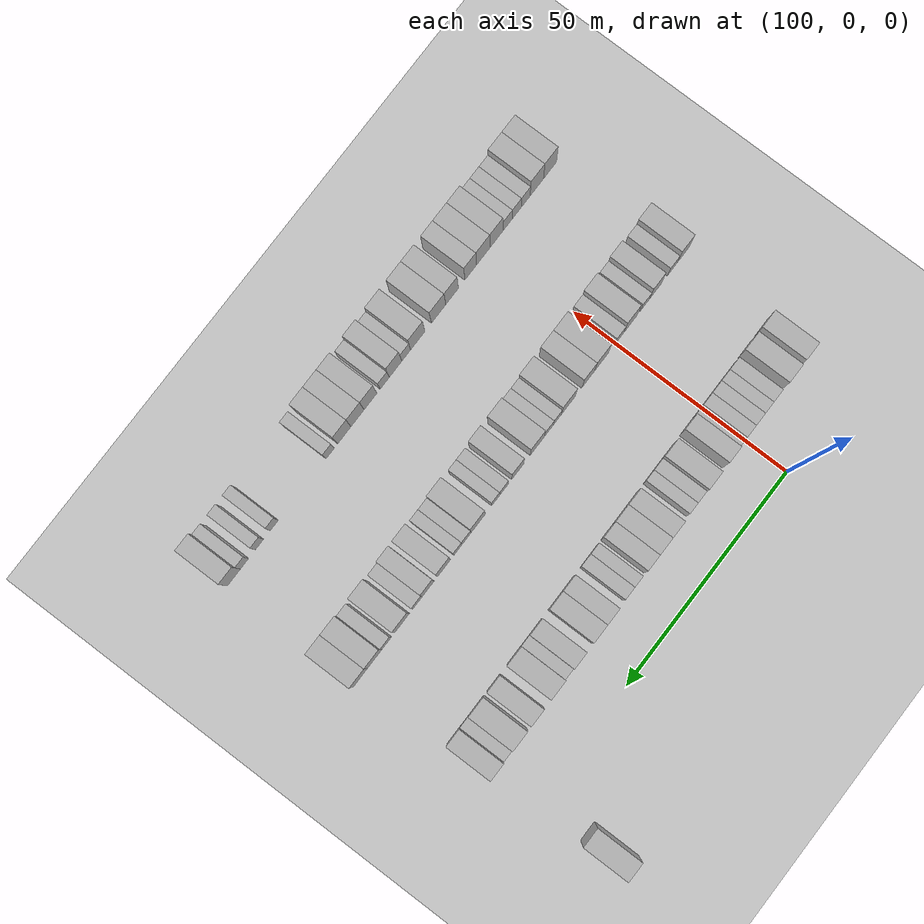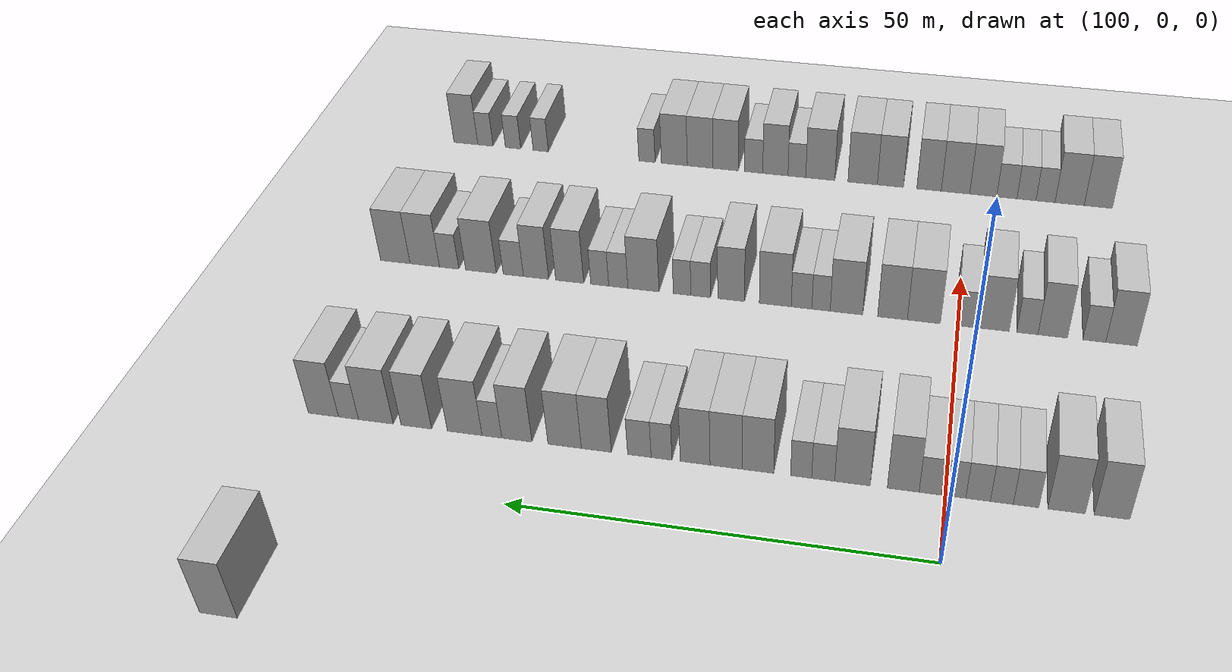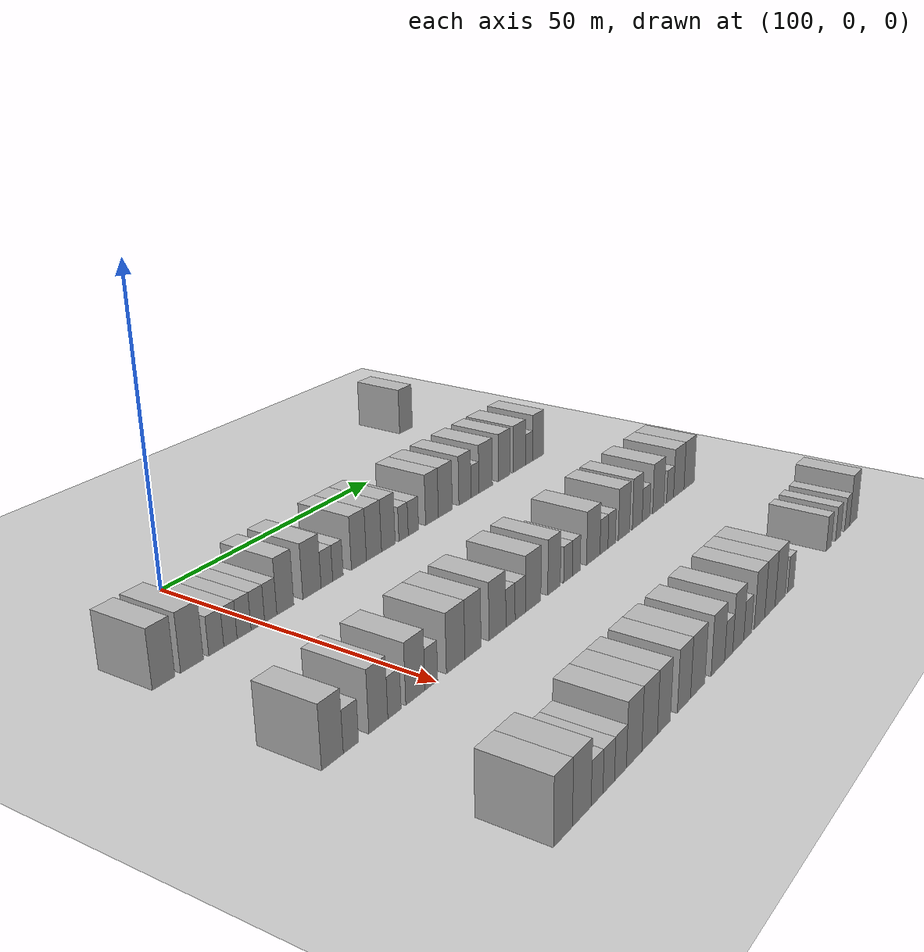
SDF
<sdf version="1.6">
 <world name="default">
  <include>
   <name>ground_plane_2</name>
   <uri>model://HANNAS_ground_plane</uri>
   <pose>100 0 0  0 0 0</pose>
  </include>
  <model name="building_597">
   <static>1</static>
   <pose>85.0000 75.3074 0 0.000000 0.000000 0.000000</pose>
   <link name="link">
    <pose>0 0 4.50 0 0 0</pose>
    <collision name="collision"><geometry><box><size>10.0000 4.2832 9.0000</size></box></geometry></collision>
    <visual name="visual">
     <cast_shadows>0</cast_shadows>
     <geometry><box><size>10.0000 4.2832 9.0000</size></box></geometry>
     <material>
      <script>
       <uri>model://HANNAS_wall/materials/scripts</uri>
       <uri>model://HANNAS_wall/materials/textures</uri>
       <name>vrc/HANNAS_wall</name>
      </script>
     </material>
    </visual>
   </link>
  </model>
  <model name="building_800">
   <static>1</static>
   <pose>115.0000 -18.8360 0 0.000000 0.000000 0.000000</pose>
   <link name="link">
    <pose>0 0 4.50 0 0 0</pose>
    <collision name="collision"><geometry><box><size>10.0000 4.0035 9.0000</size></box></geometry></collision>
    <visual name="visual">
     <cast_shadows>0</cast_shadows>
     <geometry><box><size>10.0000 4.0035 9.0000</size></box></geometry>
     <material>
      <script>
       <uri>model://HANNAS_wall/materials/scripts</uri>
       <uri>model://HANNAS_wall/materials/textures</uri>
       <name>vrc/HANNAS_wall</name>
      </script>
     </material>
    </visual>
   </link>
  </model>
  <model name="building_801">
   <static>1</static>
   <pose>115.0000 -13.7265 0 0.000000 0.000000 0.000000</pose>
   <link name="link">
    <pose>0 0 4.50 0 0 0</pose>
    <collision name="collision"><geometry><box><size>10.0000 4.2156 9.0000</size></box></geometry></collision>
    <visual name="visual">
     <cast_shadows>0</cast_shadows>
     <geometry><box><size>10.0000 4.2156 9.0000</size></box></geometry>
     <material>
      <script>
       <uri>model://HANNAS_wall/materials/scripts</uri>
       <uri>model://HANNAS_wall/materials/textures</uri>
       <name>vrc/HANNAS_wall</name>
      </script>
     </material>
    </visual>
   </link>
  </model>
  <model name="building_802">
   <static>1</static>
   <pose>115.0000 -9.1672 0 0.000000 0.000000 0.000000</pose>
   <link name="link">
    <pose>0 0 3.00 0 0 0</pose>
    <collision name="collision"><geometry><box><size>10.0000 2.9031 6.0000</size></box></geometry></collision>
    <visual name="visual">
     <cast_shadows>0</cast_shadows>
     <geometry><box><size>10.0000 2.9031 6.0000</size></box></geometry>
     <material>
      <script>
       <uri>model://HANNAS_wall/materials/scripts</uri>
       <uri>model://HANNAS_wall/materials/textures</uri>
       <name>vrc/HANNAS_wall</name>
      </script>
     </material>
    </visual>
   </link>
  </model>
  <model name="building_803">
   <static>1</static>
   <pose>115.0000 -6.4113 0 0.000000 0.000000 0.000000</pose>
   <link name="link">
    <pose>0 0 3.00 0 0 0</pose>
    <collision name="collision"><geometry><box><size>10.0000 2.6087 6.0000</size></box></geometry></collision>
    <visual name="visual">
     <cast_shadows>0</cast_shadows>
     <geometry><box><size>10.0000 2.6087 6.0000</size></box></geometry>
     <material>
      <script>
       <uri>model://HANNAS_wall/materials/scripts</uri>
       <uri>model://HANNAS_wall/materials/textures</uri>
       <name>vrc/HANNAS_wall</name>
      </script>
     </material>
    </visual>
   </link>
  </model>
  <model name="building_804">
   <static>1</static>
   <pose>115.0000 -3.6990 0 0.000000 0.000000 0.000000</pose>
   <link name="link">
    <pose>0 0 3.00 0 0 0</pose>
    <collision name="collision"><geometry><box><size>10.0000 2.8160 6.0000</size></box></geometry></collision>
    <visual name="visual">
     <cast_shadows>0</cast_shadows>
     <geometry><box><size>10.0000 2.8160 6.0000</size></box></geometry>
     <material>
      <script>
       <uri>model://HANNAS_wall/materials/scripts</uri>
       <uri>model://HANNAS_wall/materials/textures</uri>
       <name>vrc/HANNAS_wall</name>
      </script>
     </material>
    </visual>
   </link>
  </model>
  <model name="building_805">
   <static>1</static>
   <pose>115.0000 -0.8877 0 0.000000 0.000000 0.000000</pose>
   <link name="link">
    <pose>0 0 3.00 0 0 0</pose>
    <collision name="collision"><geometry><box><size>10.0000 2.8067 6.0000</size></box></geometry></collision>
    <visual name="visual">
     <cast_shadows>0</cast_shadows>
     <geometry><box><size>10.0000 2.8067 6.0000</size></box></geometry>
     <material>
      <script>
       <uri>model://HANNAS_wall/materials/scripts</uri>
       <uri>model://HANNAS_wall/materials/textures</uri>
       <name>vrc/HANNAS_wall</name>
      </script>
     </material>
    </visual>
   </link>
  </model>
  <model name="building_806">
   <static>1</static>
   <pose>115.0000 1.8029 0 0.000000 0.000000 0.000000</pose>
   <link name="link">
    <pose>0 0 3.00 0 0 0</pose>
    <collision name="collision"><geometry><box><size>10.0000 2.5746 6.0000</size></box></geometry></collision>
    <visual name="visual">
     <cast_shadows>0</cast_shadows>
     <geometry><box><size>10.0000 2.5746 6.0000</size></box></geometry>
     <material>
      <script>
       <uri>model://HANNAS_wall/materials/scripts</uri>
       <uri>model://HANNAS_wall/materials/textures</uri>
       <name>vrc/HANNAS_wall</name>
      </script>
     </material>
    </visual>
   </link>
  </model>
  <model name="building_807">
   <static>1</static>
   <pose>115.0000 4.9332 0 0.000000 0.000000 0.000000</pose>
   <link name="link">
    <pose>0 0 4.50 0 0 0</pose>
    <collision name="collision"><geometry><box><size>10.0000 3.6859 9.0000</size></box></geometry></collision>
    <visual name="visual">
     <cast_shadows>0</cast_shadows>
     <geometry><box><size>10.0000 3.6859 9.0000</size></box></geometry>
     <material>
      <script>
       <uri>model://HANNAS_wall/materials/scripts</uri>
       <uri>model://HANNAS_wall/materials/textures</uri>
       <name>vrc/HANNAS_wall</name>
      </script>
     </material>
    </visual>
   </link>
  </model>
  <model name="building_808">
   <static>1</static>
   <pose>115.0000 10.8562 0 0.000000 0.000000 0.000000</pose>
   <link name="link">
    <pose>0 0 4.50 0 0 0</pose>
    <collision name="collision"><geometry><box><size>10.0000 4.1600 9.0000</size></box></geometry></collision>
    <visual name="visual">
     <cast_shadows>0</cast_shadows>
     <geometry><box><size>10.0000 4.1600 9.0000</size></box></geometry>
     <material>
      <script>
       <uri>model://HANNAS_wall/materials/scripts</uri>
       <uri>model://HANNAS_wall/materials/textures</uri>
       <name>vrc/HANNAS_wall</name>
      </script>
     </material>
    </visual>
   </link>
  </model>
  <model name="building_809">
   <static>1</static>
   <pose>115.0000 14.2972 0 0.000000 0.000000 0.000000</pose>
   <link name="link">
    <pose>0 0 3.00 0 0 0</pose>
    <collision name="collision"><geometry><box><size>10.0000 2.7220 6.0000</size></box></geometry></collision>
    <visual name="visual">
     <cast_shadows>0</cast_shadows>
     <geometry><box><size>10.0000 2.7220 6.0000</size></box></geometry>
     <material>
      <script>
       <uri>model://HANNAS_wall/materials/scripts</uri>
       <uri>model://HANNAS_wall/materials/textures</uri>
       <name>vrc/HANNAS_wall</name>
      </script>
     </material>
    </visual>
   </link>
  </model>
  <model name="building_810">
   <static>1</static>
   <pose>115.0000 16.9041 0 0.000000 0.000000 0.000000</pose>
   <link name="link">
    <pose>0 0 3.00 0 0 0</pose>
    <collision name="collision"><geometry><box><size>10.0000 2.4919 6.0000</size></box></geometry></collision>
    <visual name="visual">
     <cast_shadows>0</cast_shadows>
     <geometry><box><size>10.0000 2.4919 6.0000</size></box></geometry>
     <material>
      <script>
       <uri>model://HANNAS_wall/materials/scripts</uri>
       <uri>model://HANNAS_wall/materials/textures</uri>
       <name>vrc/HANNAS_wall</name>
      </script>
     </material>
    </visual>
   </link>
  </model>
  <model name="building_811">
   <static>1</static>
   <pose>115.0000 22.0249 0 0.000000 0.000000 0.000000</pose>
   <link name="link">
    <pose>0 0 4.50 0 0 0</pose>
    <collision name="collision"><geometry><box><size>10.0000 3.7497 9.0000</size></box></geometry></collision>
    <visual name="visual">
     <cast_shadows>0</cast_shadows>
     <geometry><box><size>10.0000 3.7497 9.0000</size></box></geometry>
     <material>
      <script>
       <uri>model://HANNAS_wall/materials/scripts</uri>
       <uri>model://HANNAS_wall/materials/textures</uri>
       <name>vrc/HANNAS_wall</name>
      </script>
     </material>
    </visual>
   </link>
  </model>
  <model name="building_812">
   <static>1</static>
   <pose>115.0000 25.8390 0 0.000000 0.000000 0.000000</pose>
   <link name="link">
    <pose>0 0 4.50 0 0 0</pose>
    <collision name="collision"><geometry><box><size>10.0000 3.8786 9.0000</size></box></geometry></collision>
    <visual name="visual">
     <cast_shadows>0</cast_shadows>
     <geometry><box><size>10.0000 3.8786 9.0000</size></box></geometry>
     <material>
      <script>
       <uri>model://HANNAS_wall/materials/scripts</uri>
       <uri>model://HANNAS_wall/materials/textures</uri>
       <name>vrc/HANNAS_wall</name>
      </script>
     </material>
    </visual>
   </link>
  </model>
  <model name="building_813">
   <static>1</static>
   <pose>115.0000 29.5803 0 0.000000 0.000000 0.000000</pose>
   <link name="link">
    <pose>0 0 4.50 0 0 0</pose>
    <collision name="collision"><geometry><box><size>10.0000 3.6039 9.0000</size></box></geometry></collision>
    <visual name="visual">
     <cast_shadows>0</cast_shadows>
     <geometry><box><size>10.0000 3.6039 9.0000</size></box></geometry>
     <material>
      <script>
       <uri>model://HANNAS_wall/materials/scripts</uri>
       <uri>model://HANNAS_wall/materials/textures</uri>
       <name>vrc/HANNAS_wall</name>
      </script>
     </material>
    </visual>
   </link>
  </model>
  <model name="building_814">
   <static>1</static>
   <pose>115.0000 33.6521 0 0.000000 0.000000 0.000000</pose>
   <link name="link">
    <pose>0 0 3.00 0 0 0</pose>
    <collision name="collision"><geometry><box><size>10.0000 2.5398 6.0000</size></box></geometry></collision>
    <visual name="visual">
     <cast_shadows>0</cast_shadows>
     <geometry><box><size>10.0000 2.5398 6.0000</size></box></geometry>
     <material>
      <script>
       <uri>model://HANNAS_wall/materials/scripts</uri>
       <uri>model://HANNAS_wall/materials/textures</uri>
       <name>vrc/HANNAS_wall</name>
      </script>
     </material>
    </visual>
   </link>
  </model>
  <model name="building_815">
   <static>1</static>
   <pose>115.0000 36.3598 0 0.000000 0.000000 0.000000</pose>
   <link name="link">
    <pose>0 0 3.00 0 0 0</pose>
    <collision name="collision"><geometry><box><size>10.0000 2.8755 6.0000</size></box></geometry></collision>
    <visual name="visual">
     <cast_shadows>0</cast_shadows>
     <geometry><box><size>10.0000 2.8755 6.0000</size></box></geometry>
     <material>
      <script>
       <uri>model://HANNAS_wall/materials/scripts</uri>
       <uri>model://HANNAS_wall/materials/textures</uri>
       <name>vrc/HANNAS_wall</name>
      </script>
     </material>
    </visual>
   </link>
  </model>
  <model name="building_816">
   <static>1</static>
   <pose>115.0000 41.6470 0 0.000000 0.000000 0.000000</pose>
   <link name="link">
    <pose>0 0 4.50 0 0 0</pose>
    <collision name="collision"><geometry><box><size>10.0000 3.6990 9.0000</size></box></geometry></collision>
    <visual name="visual">
     <cast_shadows>0</cast_shadows>
     <geometry><box><size>10.0000 3.6990 9.0000</size></box></geometry>
     <material>
      <script>
       <uri>model://HANNAS_wall/materials/scripts</uri>
       <uri>model://HANNAS_wall/materials/textures</uri>
       <name>vrc/HANNAS_wall</name>
      </script>
     </material>
    </visual>
   </link>
  </model>
  <model name="building_817">
   <static>1</static>
   <pose>115.0000 45.5641 0 0.000000 0.000000 0.000000</pose>
   <link name="link">
    <pose>0 0 4.50 0 0 0</pose>
    <collision name="collision"><geometry><box><size>10.0000 4.1351 9.0000</size></box></geometry></collision>
    <visual name="visual">
     <cast_shadows>0</cast_shadows>
     <geometry><box><size>10.0000 4.1351 9.0000</size></box></geometry>
     <material>
      <script>
       <uri>model://HANNAS_wall/materials/scripts</uri>
       <uri>model://HANNAS_wall/materials/textures</uri>
       <name>vrc/HANNAS_wall</name>
      </script>
     </material>
    </visual>
   </link>
  </model>
  <model name="building_818">
   <static>1</static>
   <pose>115.0000 51.5233 0 0.000000 0.000000 0.000000</pose>
   <link name="link">
    <pose>0 0 4.50 0 0 0</pose>
    <collision name="collision"><geometry><box><size>10.0000 3.7833 9.0000</size></box></geometry></collision>
    <visual name="visual">
     <cast_shadows>0</cast_shadows>
     <geometry><box><size>10.0000 3.7833 9.0000</size></box></geometry>
     <material>
      <script>
       <uri>model://HANNAS_wall/materials/scripts</uri>
       <uri>model://HANNAS_wall/materials/textures</uri>
       <name>vrc/HANNAS_wall</name>
      </script>
     </material>
    </visual>
   </link>
  </model>
  <model name="building_819">
   <static>1</static>
   <pose>115.0000 54.6541 0 0.000000 0.000000 0.000000</pose>
   <link name="link">
    <pose>0 0 3.00 0 0 0</pose>
    <collision name="collision"><geometry><box><size>10.0000 2.4783 6.0000</size></box></geometry></collision>
    <visual name="visual">
     <cast_shadows>0</cast_shadows>
     <geometry><box><size>10.0000 2.4783 6.0000</size></box></geometry>
     <material>
      <script>
       <uri>model://HANNAS_wall/materials/scripts</uri>
       <uri>model://HANNAS_wall/materials/textures</uri>
       <name>vrc/HANNAS_wall</name>
      </script>
     </material>
    </visual>
   </link>
  </model>
  <model name="building_820">
   <static>1</static>
   <pose>115.0000 58.0947 0 0.000000 0.000000 0.000000</pose>
   <link name="link">
    <pose>0 0 4.50 0 0 0</pose>
    <collision name="collision"><geometry><box><size>10.0000 4.4030 9.0000</size></box></geometry></collision>
    <visual name="visual">
     <cast_shadows>0</cast_shadows>
     <geometry><box><size>10.0000 4.4030 9.0000</size></box></geometry>
     <material>
      <script>
       <uri>model://HANNAS_wall/materials/scripts</uri>
       <uri>model://HANNAS_wall/materials/textures</uri>
       <name>vrc/HANNAS_wall</name>
      </script>
     </material>
    </visual>
   </link>
  </model>
  <model name="building_821">
   <static>1</static>
   <pose>115.0000 64.2524 0 0.000000 0.000000 0.000000</pose>
   <link name="link">
    <pose>0 0 4.50 0 0 0</pose>
    <collision name="collision"><geometry><box><size>10.0000 3.9123 9.0000</size></box></geometry></collision>
    <visual name="visual">
     <cast_shadows>0</cast_shadows>
     <geometry><box><size>10.0000 3.9123 9.0000</size></box></geometry>
     <material>
      <script>
       <uri>model://HANNAS_wall/materials/scripts</uri>
       <uri>model://HANNAS_wall/materials/textures</uri>
       <name>vrc/HANNAS_wall</name>
      </script>
     </material>
    </visual>
   </link>
  </model>
  <model name="building_822">
   <static>1</static>
   <pose>115.0000 69.4478 0 0.000000 0.000000 0.000000</pose>
   <link name="link">
    <pose>0 0 4.50 0 0 0</pose>
    <collision name="collision"><geometry><box><size>10.0000 4.4786 9.0000</size></box></geometry></collision>
    <visual name="visual">
     <cast_shadows>0</cast_shadows>
     <geometry><box><size>10.0000 4.4786 9.0000</size></box></geometry>
     <material>
      <script>
       <uri>model://HANNAS_wall/materials/scripts</uri>
       <uri>model://HANNAS_wall/materials/textures</uri>
       <name>vrc/HANNAS_wall</name>
      </script>
     </material>
    </visual>
   </link>
  </model>
  <model name="building_823">
   <static>1</static>
   <pose>115.0000 72.9810 0 0.000000 0.000000 0.000000</pose>
   <link name="link">
    <pose>0 0 3.00 0 0 0</pose>
    <collision name="collision"><geometry><box><size>10.0000 2.5877 6.0000</size></box></geometry></collision>
    <visual name="visual">
     <cast_shadows>0</cast_shadows>
     <geometry><box><size>10.0000 2.5877 6.0000</size></box></geometry>
     <material>
      <script>
       <uri>model://HANNAS_wall/materials/scripts</uri>
       <uri>model://HANNAS_wall/materials/textures</uri>
       <name>vrc/HANNAS_wall</name>
      </script>
     </material>
    </visual>
   </link>
  </model>
  <model name="building_824">
   <static>1</static>
   <pose>115.0000 76.2417 0 0.000000 0.000000 0.000000</pose>
   <link name="link">
    <pose>0 0 4.50 0 0 0</pose>
    <collision name="collision"><geometry><box><size>10.0000 3.9338 9.0000</size></box></geometry></collision>
    <visual name="visual">
     <cast_shadows>0</cast_shadows>
     <geometry><box><size>10.0000 3.9338 9.0000</size></box></geometry>
     <material>
      <script>
       <uri>model://HANNAS_wall/materials/scripts</uri>
       <uri>model://HANNAS_wall/materials/textures</uri>
       <name>vrc/HANNAS_wall</name>
      </script>
     </material>
    </visual>
   </link>
  </model>
  <model name="building_1041">
   <static>1</static>
   <pose>145.0000 -21.2074 0 0.000000 0.000000 0.000000</pose>
   <link name="link">
    <pose>0 0 4.50 0 0 0</pose>
    <collision name="collision"><geometry><box><size>10.0000 4.0136 9.0000</size></box></geometry></collision>
    <visual name="visual">
     <cast_shadows>0</cast_shadows>
     <geometry><box><size>10.0000 4.0136 9.0000</size></box></geometry>
     <material>
      <script>
       <uri>model://HANNAS_wall/materials/scripts</uri>
       <uri>model://HANNAS_wall/materials/textures</uri>
       <name>vrc/HANNAS_wall</name>
      </script>
     </material>
    </visual>
   </link>
  </model>
  <model name="building_1042">
   <static>1</static>
   <pose>145.0000 -17.7355 0 0.000000 0.000000 0.000000</pose>
   <link name="link">
    <pose>0 0 3.00 0 0 0</pose>
    <collision name="collision"><geometry><box><size>10.0000 2.9302 6.0000</size></box></geometry></collision>
    <visual name="visual">
     <cast_shadows>0</cast_shadows>
     <geometry><box><size>10.0000 2.9302 6.0000</size></box></geometry>
     <material>
      <script>
       <uri>model://HANNAS_wall/materials/scripts</uri>
       <uri>model://HANNAS_wall/materials/textures</uri>
       <name>vrc/HANNAS_wall</name>
      </script>
     </material>
    </visual>
   </link>
  </model>
  <model name="building_1043">
   <static>1</static>
   <pose>145.0000 -12.3583 0 0.000000 0.000000 0.000000</pose>
   <link name="link">
    <pose>0 0 4.50 0 0 0</pose>
    <collision name="collision"><geometry><box><size>10.0000 3.8242 9.0000</size></box></geometry></collision>
    <visual name="visual">
     <cast_shadows>0</cast_shadows>
     <geometry><box><size>10.0000 3.8242 9.0000</size></box></geometry>
     <material>
      <script>
       <uri>model://HANNAS_wall/materials/scripts</uri>
       <uri>model://HANNAS_wall/materials/textures</uri>
       <name>vrc/HANNAS_wall</name>
      </script>
     </material>
    </visual>
   </link>
  </model>
  <model name="building_1044">
   <static>1</static>
   <pose>145.0000 -9.0748 0 0.000000 0.000000 0.000000</pose>
   <link name="link">
    <pose>0 0 3.00 0 0 0</pose>
    <collision name="collision"><geometry><box><size>10.0000 2.7429 6.0000</size></box></geometry></collision>
    <visual name="visual">
     <cast_shadows>0</cast_shadows>
     <geometry><box><size>10.0000 2.7429 6.0000</size></box></geometry>
     <material>
      <script>
       <uri>model://HANNAS_wall/materials/scripts</uri>
       <uri>model://HANNAS_wall/materials/textures</uri>
       <name>vrc/HANNAS_wall</name>
      </script>
     </material>
    </visual>
   </link>
  </model>
  <model name="building_1045">
   <static>1</static>
   <pose>145.0000 -4.6129 0 0.000000 0.000000 0.000000</pose>
   <link name="link">
    <pose>0 0 4.50 0 0 0</pose>
    <collision name="collision"><geometry><box><size>10.0000 4.1809 9.0000</size></box></geometry></collision>
    <visual name="visual">
     <cast_shadows>0</cast_shadows>
     <geometry><box><size>10.0000 4.1809 9.0000</size></box></geometry>
     <material>
      <script>
       <uri>model://HANNAS_wall/materials/scripts</uri>
       <uri>model://HANNAS_wall/materials/textures</uri>
       <name>vrc/HANNAS_wall</name>
      </script>
     </material>
    </visual>
   </link>
  </model>
  <model name="building_1046">
   <static>1</static>
   <pose>145.0000 -1.1003 0 0.000000 0.000000 0.000000</pose>
   <link name="link">
    <pose>0 0 3.00 0 0 0</pose>
    <collision name="collision"><geometry><box><size>10.0000 2.8442 6.0000</size></box></geometry></collision>
    <visual name="visual">
     <cast_shadows>0</cast_shadows>
     <geometry><box><size>10.0000 2.8442 6.0000</size></box></geometry>
     <material>
      <script>
       <uri>model://HANNAS_wall/materials/scripts</uri>
       <uri>model://HANNAS_wall/materials/textures</uri>
       <name>vrc/HANNAS_wall</name>
      </script>
     </material>
    </visual>
   </link>
  </model>
  <model name="building_1047">
   <static>1</static>
   <pose>145.0000 4.5111 0 0.000000 0.000000 0.000000</pose>
   <link name="link">
    <pose>0 0 4.50 0 0 0</pose>
    <collision name="collision"><geometry><box><size>10.0000 4.3785 9.0000</size></box></geometry></collision>
    <visual name="visual">
     <cast_shadows>0</cast_shadows>
     <geometry><box><size>10.0000 4.3785 9.0000</size></box></geometry>
     <material>
      <script>
       <uri>model://HANNAS_wall/materials/scripts</uri>
       <uri>model://HANNAS_wall/materials/textures</uri>
       <name>vrc/HANNAS_wall</name>
      </script>
     </material>
    </visual>
   </link>
  </model>
  <model name="building_1048">
   <static>1</static>
   <pose>145.0000 8.6784 0 0.000000 0.000000 0.000000</pose>
   <link name="link">
    <pose>0 0 4.50 0 0 0</pose>
    <collision name="collision"><geometry><box><size>10.0000 3.9560 9.0000</size></box></geometry></collision>
    <visual name="visual">
     <cast_shadows>0</cast_shadows>
     <geometry><box><size>10.0000 3.9560 9.0000</size></box></geometry>
     <material>
      <script>
       <uri>model://HANNAS_wall/materials/scripts</uri>
       <uri>model://HANNAS_wall/materials/textures</uri>
       <name>vrc/HANNAS_wall</name>
      </script>
     </material>
    </visual>
   </link>
  </model>
  <model name="building_1049">
   <static>1</static>
   <pose>145.0000 14.8472 0 0.000000 0.000000 0.000000</pose>
   <link name="link">
    <pose>0 0 4.50 0 0 0</pose>
    <collision name="collision"><geometry><box><size>10.0000 4.3815 9.0000</size></box></geometry></collision>
    <visual name="visual">
     <cast_shadows>0</cast_shadows>
     <geometry><box><size>10.0000 4.3815 9.0000</size></box></geometry>
     <material>
      <script>
       <uri>model://HANNAS_wall/materials/scripts</uri>
       <uri>model://HANNAS_wall/materials/textures</uri>
       <name>vrc/HANNAS_wall</name>
      </script>
     </material>
    </visual>
   </link>
  </model>
  <model name="building_1050">
   <static>1</static>
   <pose>145.0000 18.2744 0 0.000000 0.000000 0.000000</pose>
   <link name="link">
    <pose>0 0 3.00 0 0 0</pose>
    <collision name="collision"><geometry><box><size>10.0000 2.4730 6.0000</size></box></geometry></collision>
    <visual name="visual">
     <cast_shadows>0</cast_shadows>
     <geometry><box><size>10.0000 2.4730 6.0000</size></box></geometry>
     <material>
      <script>
       <uri>model://HANNAS_wall/materials/scripts</uri>
       <uri>model://HANNAS_wall/materials/textures</uri>
       <name>vrc/HANNAS_wall</name>
      </script>
     </material>
    </visual>
   </link>
  </model>
  <model name="building_1051">
   <static>1</static>
   <pose>145.0000 20.9094 0 0.000000 0.000000 0.000000</pose>
   <link name="link">
    <pose>0 0 3.00 0 0 0</pose>
    <collision name="collision"><geometry><box><size>10.0000 2.7970 6.0000</size></box></geometry></collision>
    <visual name="visual">
     <cast_shadows>0</cast_shadows>
     <geometry><box><size>10.0000 2.7970 6.0000</size></box></geometry>
     <material>
      <script>
       <uri>model://HANNAS_wall/materials/scripts</uri>
       <uri>model://HANNAS_wall/materials/textures</uri>
       <name>vrc/HANNAS_wall</name>
      </script>
     </material>
    </visual>
   </link>
  </model>
  <model name="building_1052">
   <static>1</static>
   <pose>145.0000 24.4885 0 0.000000 0.000000 0.000000</pose>
   <link name="link">
    <pose>0 0 4.50 0 0 0</pose>
    <collision name="collision"><geometry><box><size>10.0000 4.3610 9.0000</size></box></geometry></collision>
    <visual name="visual">
     <cast_shadows>0</cast_shadows>
     <geometry><box><size>10.0000 4.3610 9.0000</size></box></geometry>
     <material>
      <script>
       <uri>model://HANNAS_wall/materials/scripts</uri>
       <uri>model://HANNAS_wall/materials/textures</uri>
       <name>vrc/HANNAS_wall</name>
      </script>
     </material>
    </visual>
   </link>
  </model>
  <model name="building_1053">
   <static>1</static>
   <pose>145.0000 30.5204 0 0.000000 0.000000 0.000000</pose>
   <link name="link">
    <pose>0 0 4.50 0 0 0</pose>
    <collision name="collision"><geometry><box><size>10.0000 3.7029 9.0000</size></box></geometry></collision>
    <visual name="visual">
     <cast_shadows>0</cast_shadows>
     <geometry><box><size>10.0000 3.7029 9.0000</size></box></geometry>
     <material>
      <script>
       <uri>model://HANNAS_wall/materials/scripts</uri>
       <uri>model://HANNAS_wall/materials/textures</uri>
       <name>vrc/HANNAS_wall</name>
      </script>
     </material>
    </visual>
   </link>
  </model>
  <model name="building_1054">
   <static>1</static>
   <pose>145.0000 34.7266 0 0.000000 0.000000 0.000000</pose>
   <link name="link">
    <pose>0 0 3.00 0 0 0</pose>
    <collision name="collision"><geometry><box><size>10.0000 2.7094 6.0000</size></box></geometry></collision>
    <visual name="visual">
     <cast_shadows>0</cast_shadows>
     <geometry><box><size>10.0000 2.7094 6.0000</size></box></geometry>
     <material>
      <script>
       <uri>model://HANNAS_wall/materials/scripts</uri>
       <uri>model://HANNAS_wall/materials/textures</uri>
       <name>vrc/HANNAS_wall</name>
      </script>
     </material>
    </visual>
   </link>
  </model>
  <model name="building_1055">
   <static>1</static>
   <pose>145.0000 37.3034 0 0.000000 0.000000 0.000000</pose>
   <link name="link">
    <pose>0 0 3.00 0 0 0</pose>
    <collision name="collision"><geometry><box><size>10.0000 2.4441 6.0000</size></box></geometry></collision>
    <visual name="visual">
     <cast_shadows>0</cast_shadows>
     <geometry><box><size>10.0000 2.4441 6.0000</size></box></geometry>
     <material>
      <script>
       <uri>model://HANNAS_wall/materials/scripts</uri>
       <uri>model://HANNAS_wall/materials/textures</uri>
       <name>vrc/HANNAS_wall</name>
      </script>
     </material>
    </visual>
   </link>
  </model>
  <model name="building_1056">
   <static>1</static>
   <pose>145.0000 42.7091 0 0.000000 0.000000 0.000000</pose>
   <link name="link">
    <pose>0 0 4.50 0 0 0</pose>
    <collision name="collision"><geometry><box><size>10.0000 4.3673 9.0000</size></box></geometry></collision>
    <visual name="visual">
     <cast_shadows>0</cast_shadows>
     <geometry><box><size>10.0000 4.3673 9.0000</size></box></geometry>
     <material>
      <script>
       <uri>model://HANNAS_wall/materials/scripts</uri>
       <uri>model://HANNAS_wall/materials/textures</uri>
       <name>vrc/HANNAS_wall</name>
      </script>
     </material>
    </visual>
   </link>
  </model>
  <model name="building_1057">
   <static>1</static>
   <pose>145.0000 46.2396 0 0.000000 0.000000 0.000000</pose>
   <link name="link">
    <pose>0 0 3.00 0 0 0</pose>
    <collision name="collision"><geometry><box><size>10.0000 2.6938 6.0000</size></box></geometry></collision>
    <visual name="visual">
     <cast_shadows>0</cast_shadows>
     <geometry><box><size>10.0000 2.6938 6.0000</size></box></geometry>
     <material>
      <script>
       <uri>model://HANNAS_wall/materials/scripts</uri>
       <uri>model://HANNAS_wall/materials/textures</uri>
       <name>vrc/HANNAS_wall</name>
      </script>
     </material>
    </visual>
   </link>
  </model>
  <model name="building_1058">
   <static>1</static>
   <pose>145.0000 48.8511 0 0.000000 0.000000 0.000000</pose>
   <link name="link">
    <pose>0 0 3.00 0 0 0</pose>
    <collision name="collision"><geometry><box><size>10.0000 2.5290 6.0000</size></box></geometry></collision>
    <visual name="visual">
     <cast_shadows>0</cast_shadows>
     <geometry><box><size>10.0000 2.5290 6.0000</size></box></geometry>
     <material>
      <script>
       <uri>model://HANNAS_wall/materials/scripts</uri>
       <uri>model://HANNAS_wall/materials/textures</uri>
       <name>vrc/HANNAS_wall</name>
      </script>
     </material>
    </visual>
   </link>
  </model>
  <model name="building_1059">
   <static>1</static>
   <pose>145.0000 53.1123 0 0.000000 0.000000 0.000000</pose>
   <link name="link">
    <pose>0 0 4.50 0 0 0</pose>
    <collision name="collision"><geometry><box><size>10.0000 3.9935 9.0000</size></box></geometry></collision>
    <visual name="visual">
     <cast_shadows>0</cast_shadows>
     <geometry><box><size>10.0000 3.9935 9.0000</size></box></geometry>
     <material>
      <script>
       <uri>model://HANNAS_wall/materials/scripts</uri>
       <uri>model://HANNAS_wall/materials/textures</uri>
       <name>vrc/HANNAS_wall</name>
      </script>
     </material>
    </visual>
   </link>
  </model>
  <model name="building_1060">
   <static>1</static>
   <pose>145.0000 57.9123 0 0.000000 0.000000 0.000000</pose>
   <link name="link">
    <pose>0 0 4.50 0 0 0</pose>
    <collision name="collision"><geometry><box><size>10.0000 3.6066 9.0000</size></box></geometry></collision>
    <visual name="visual">
     <cast_shadows>0</cast_shadows>
     <geometry><box><size>10.0000 3.6066 9.0000</size></box></geometry>
     <material>
      <script>
       <uri>model://HANNAS_wall/materials/scripts</uri>
       <uri>model://HANNAS_wall/materials/textures</uri>
       <name>vrc/HANNAS_wall</name>
      </script>
     </material>
    </visual>
   </link>
  </model>
  <model name="building_1061">
   <static>1</static>
   <pose>145.0000 61.1669 0 0.000000 0.000000 0.000000</pose>
   <link name="link">
    <pose>0 0 3.00 0 0 0</pose>
    <collision name="collision"><geometry><box><size>10.0000 2.9025 6.0000</size></box></geometry></collision>
    <visual name="visual">
     <cast_shadows>0</cast_shadows>
     <geometry><box><size>10.0000 2.9025 6.0000</size></box></geometry>
     <material>
      <script>
       <uri>model://HANNAS_wall/materials/scripts</uri>
       <uri>model://HANNAS_wall/materials/textures</uri>
       <name>vrc/HANNAS_wall</name>
      </script>
     </material>
    </visual>
   </link>
  </model>
  <model name="building_1062">
   <static>1</static>
   <pose>145.0000 65.8299 0 0.000000 0.000000 0.000000</pose>
   <link name="link">
    <pose>0 0 4.50 0 0 0</pose>
    <collision name="collision"><geometry><box><size>10.0000 4.4236 9.0000</size></box></geometry></collision>
    <visual name="visual">
     <cast_shadows>0</cast_shadows>
     <geometry><box><size>10.0000 4.4236 9.0000</size></box></geometry>
     <material>
      <script>
       <uri>model://HANNAS_wall/materials/scripts</uri>
       <uri>model://HANNAS_wall/materials/textures</uri>
       <name>vrc/HANNAS_wall</name>
      </script>
     </material>
    </visual>
   </link>
  </model>
  <model name="building_1063">
   <static>1</static>
   <pose>145.0000 70.4531 0 0.000000 0.000000 0.000000</pose>
   <link name="link">
    <pose>0 0 3.00 0 0 0</pose>
    <collision name="collision"><geometry><box><size>10.0000 2.8227 6.0000</size></box></geometry></collision>
    <visual name="visual">
     <cast_shadows>0</cast_shadows>
     <geometry><box><size>10.0000 2.8227 6.0000</size></box></geometry>
     <material>
      <script>
       <uri>model://HANNAS_wall/materials/scripts</uri>
       <uri>model://HANNAS_wall/materials/textures</uri>
       <name>vrc/HANNAS_wall</name>
      </script>
     </material>
    </visual>
   </link>
  </model>
  <model name="building_1064">
   <static>1</static>
   <pose>145.0000 74.0066 0 0.000000 0.000000 0.000000</pose>
   <link name="link">
    <pose>0 0 4.50 0 0 0</pose>
    <collision name="collision"><geometry><box><size>10.0000 4.2843 9.0000</size></box></geometry></collision>
    <visual name="visual">
     <cast_shadows>0</cast_shadows>
     <geometry><box><size>10.0000 4.2843 9.0000</size></box></geometry>
     <material>
      <script>
       <uri>model://HANNAS_wall/materials/scripts</uri>
       <uri>model://HANNAS_wall/materials/textures</uri>
       <name>vrc/HANNAS_wall</name>
      </script>
     </material>
    </visual>
   </link>
  </model>
  <model name="building_1065">
   <static>1</static>
   <pose>145.0000 78.3192 0 0.000000 0.000000 0.000000</pose>
   <link name="link">
    <pose>0 0 4.50 0 0 0</pose>
    <collision name="collision"><geometry><box><size>10.0000 4.3410 9.0000</size></box></geometry></collision>
    <visual name="visual">
     <cast_shadows>0</cast_shadows>
     <geometry><box><size>10.0000 4.3410 9.0000</size></box></geometry>
     <material>
      <script>
       <uri>model://HANNAS_wall/materials/scripts</uri>
       <uri>model://HANNAS_wall/materials/textures</uri>
       <name>vrc/HANNAS_wall</name>
      </script>
     </material>
    </visual>
   </link>
  </model>
  <model name="building_1270">
   <static>1</static>
   <pose>175.0000 -19.1697 0 0.000000 0.000000 0.000000</pose>
   <link name="link">
    <pose>0 0 4.50 0 0 0</pose>
    <collision name="collision"><geometry><box><size>10.0000 4.0812 9.0000</size></box></geometry></collision>
    <visual name="visual">
     <cast_shadows>0</cast_shadows>
     <geometry><box><size>10.0000 4.0812 9.0000</size></box></geometry>
     <material>
      <script>
       <uri>model://HANNAS_wall/materials/scripts</uri>
       <uri>model://HANNAS_wall/materials/textures</uri>
       <name>vrc/HANNAS_wall</name>
      </script>
     </material>
    </visual>
   </link>
  </model>
  <model name="building_1271">
   <static>1</static>
   <pose>175.0000 -15.0107 0 0.000000 0.000000 0.000000</pose>
   <link name="link">
    <pose>0 0 4.50 0 0 0</pose>
    <collision name="collision"><geometry><box><size>10.0000 4.2368 9.0000</size></box></geometry></collision>
    <visual name="visual">
     <cast_shadows>0</cast_shadows>
     <geometry><box><size>10.0000 4.2368 9.0000</size></box></geometry>
     <material>
      <script>
       <uri>model://HANNAS_wall/materials/scripts</uri>
       <uri>model://HANNAS_wall/materials/textures</uri>
       <name>vrc/HANNAS_wall</name>
      </script>
     </material>
    </visual>
   </link>
  </model>
  <model name="building_1272">
   <static>1</static>
   <pose>175.0000 -11.5038 0 0.000000 0.000000 0.000000</pose>
   <link name="link">
    <pose>0 0 3.00 0 0 0</pose>
    <collision name="collision"><geometry><box><size>10.0000 2.7770 6.0000</size></box></geometry></collision>
    <visual name="visual">
     <cast_shadows>0</cast_shadows>
     <geometry><box><size>10.0000 2.7770 6.0000</size></box></geometry>
     <material>
      <script>
       <uri>model://HANNAS_wall/materials/scripts</uri>
       <uri>model://HANNAS_wall/materials/textures</uri>
       <name>vrc/HANNAS_wall</name>
      </script>
     </material>
    </visual>
   </link>
  </model>
  <model name="building_1273">
   <static>1</static>
   <pose>175.0000 -8.7169 0 0.000000 0.000000 0.000000</pose>
   <link name="link">
    <pose>0 0 3.00 0 0 0</pose>
    <collision name="collision"><geometry><box><size>10.0000 2.7966 6.0000</size></box></geometry></collision>
    <visual name="visual">
     <cast_shadows>0</cast_shadows>
     <geometry><box><size>10.0000 2.7966 6.0000</size></box></geometry>
     <material>
      <script>
       <uri>model://HANNAS_wall/materials/scripts</uri>
       <uri>model://HANNAS_wall/materials/textures</uri>
       <name>vrc/HANNAS_wall</name>
      </script>
     </material>
    </visual>
   </link>
  </model>
  <model name="building_1274">
   <static>1</static>
   <pose>175.0000 -5.8325 0 0.000000 0.000000 0.000000</pose>
   <link name="link">
    <pose>0 0 3.00 0 0 0</pose>
    <collision name="collision"><geometry><box><size>10.0000 2.9722 6.0000</size></box></geometry></collision>
    <visual name="visual">
     <cast_shadows>0</cast_shadows>
     <geometry><box><size>10.0000 2.9722 6.0000</size></box></geometry>
     <material>
      <script>
       <uri>model://HANNAS_wall/materials/scripts</uri>
       <uri>model://HANNAS_wall/materials/textures</uri>
       <name>vrc/HANNAS_wall</name>
      </script>
     </material>
    </visual>
   </link>
  </model>
  <model name="building_1275">
   <static>1</static>
   <pose>175.0000 -2.3447 0 0.000000 0.000000 0.000000</pose>
   <link name="link">
    <pose>0 0 4.50 0 0 0</pose>
    <collision name="collision"><geometry><box><size>10.0000 4.0033 9.0000</size></box></geometry></collision>
    <visual name="visual">
     <cast_shadows>0</cast_shadows>
     <geometry><box><size>10.0000 4.0033 9.0000</size></box></geometry>
     <material>
      <script>
       <uri>model://HANNAS_wall/materials/scripts</uri>
       <uri>model://HANNAS_wall/materials/textures</uri>
       <name>vrc/HANNAS_wall</name>
      </script>
     </material>
    </visual>
   </link>
  </model>
  <model name="building_1276">
   <static>1</static>
   <pose>175.0000 1.7671 0 0.000000 0.000000 0.000000</pose>
   <link name="link">
    <pose>0 0 4.50 0 0 0</pose>
    <collision name="collision"><geometry><box><size>10.0000 4.2204 9.0000</size></box></geometry></collision>
    <visual name="visual">
     <cast_shadows>0</cast_shadows>
     <geometry><box><size>10.0000 4.2204 9.0000</size></box></geometry>
     <material>
      <script>
       <uri>model://HANNAS_wall/materials/scripts</uri>
       <uri>model://HANNAS_wall/materials/textures</uri>
       <name>vrc/HANNAS_wall</name>
      </script>
     </material>
    </visual>
   </link>
  </model>
  <model name="building_1277">
   <static>1</static>
   <pose>175.0000 5.7030 0 0.000000 0.000000 0.000000</pose>
   <link name="link">
    <pose>0 0 4.50 0 0 0</pose>
    <collision name="collision"><geometry><box><size>10.0000 3.6515 9.0000</size></box></geometry></collision>
    <visual name="visual">
     <cast_shadows>0</cast_shadows>
     <geometry><box><size>10.0000 3.6515 9.0000</size></box></geometry>
     <material>
      <script>
       <uri>model://HANNAS_wall/materials/scripts</uri>
       <uri>model://HANNAS_wall/materials/textures</uri>
       <name>vrc/HANNAS_wall</name>
      </script>
     </material>
    </visual>
   </link>
  </model>
  <model name="building_1278">
   <static>1</static>
   <pose>175.0000 11.4887 0 0.000000 0.000000 0.000000</pose>
   <link name="link">
    <pose>0 0 4.50 0 0 0</pose>
    <collision name="collision"><geometry><box><size>10.0000 3.9198 9.0000</size></box></geometry></collision>
    <visual name="visual">
     <cast_shadows>0</cast_shadows>
     <geometry><box><size>10.0000 3.9198 9.0000</size></box></geometry>
     <material>
      <script>
       <uri>model://HANNAS_wall/materials/scripts</uri>
       <uri>model://HANNAS_wall/materials/textures</uri>
       <name>vrc/HANNAS_wall</name>
      </script>
     </material>
    </visual>
   </link>
  </model>
  <model name="building_1279">
   <static>1</static>
   <pose>175.0000 15.6757 0 0.000000 0.000000 0.000000</pose>
   <link name="link">
    <pose>0 0 4.50 0 0 0</pose>
    <collision name="collision"><geometry><box><size>10.0000 4.4542 9.0000</size></box></geometry></collision>
    <visual name="visual">
     <cast_shadows>0</cast_shadows>
     <geometry><box><size>10.0000 4.4542 9.0000</size></box></geometry>
     <material>
      <script>
       <uri>model://HANNAS_wall/materials/scripts</uri>
       <uri>model://HANNAS_wall/materials/textures</uri>
       <name>vrc/HANNAS_wall</name>
      </script>
     </material>
    </visual>
   </link>
  </model>
  <model name="building_1280">
   <static>1</static>
   <pose>175.0000 22.1145 0 0.000000 0.000000 0.000000</pose>
   <link name="link">
    <pose>0 0 4.50 0 0 0</pose>
    <collision name="collision"><geometry><box><size>10.0000 4.4236 9.0000</size></box></geometry></collision>
    <visual name="visual">
     <cast_shadows>0</cast_shadows>
     <geometry><box><size>10.0000 4.4236 9.0000</size></box></geometry>
     <material>
      <script>
       <uri>model://HANNAS_wall/materials/scripts</uri>
       <uri>model://HANNAS_wall/materials/textures</uri>
       <name>vrc/HANNAS_wall</name>
      </script>
     </material>
    </visual>
   </link>
  </model>
  <model name="building_1281">
   <static>1</static>
   <pose>175.0000 25.6879 0 0.000000 0.000000 0.000000</pose>
   <link name="link">
    <pose>0 0 3.00 0 0 0</pose>
    <collision name="collision"><geometry><box><size>10.0000 2.7232 6.0000</size></box></geometry></collision>
    <visual name="visual">
     <cast_shadows>0</cast_shadows>
     <geometry><box><size>10.0000 2.7232 6.0000</size></box></geometry>
     <material>
      <script>
       <uri>model://HANNAS_wall/materials/scripts</uri>
       <uri>model://HANNAS_wall/materials/textures</uri>
       <name>vrc/HANNAS_wall</name>
      </script>
     </material>
    </visual>
   </link>
  </model>
  <model name="building_1282">
   <static>1</static>
   <pose>175.0000 28.9870 0 0.000000 0.000000 0.000000</pose>
   <link name="link">
    <pose>0 0 4.50 0 0 0</pose>
    <collision name="collision"><geometry><box><size>10.0000 3.8751 9.0000</size></box></geometry></collision>
    <visual name="visual">
     <cast_shadows>0</cast_shadows>
     <geometry><box><size>10.0000 3.8751 9.0000</size></box></geometry>
     <material>
      <script>
       <uri>model://HANNAS_wall/materials/scripts</uri>
       <uri>model://HANNAS_wall/materials/textures</uri>
       <name>vrc/HANNAS_wall</name>
      </script>
     </material>
    </visual>
   </link>
  </model>
  <model name="building_1283">
   <static>1</static>
   <pose>175.0000 32.3231 0 0.000000 0.000000 0.000000</pose>
   <link name="link">
    <pose>0 0 3.00 0 0 0</pose>
    <collision name="collision"><geometry><box><size>10.0000 2.7970 6.0000</size></box></geometry></collision>
    <visual name="visual">
     <cast_shadows>0</cast_shadows>
     <geometry><box><size>10.0000 2.7970 6.0000</size></box></geometry>
     <material>
      <script>
       <uri>model://HANNAS_wall/materials/scripts</uri>
       <uri>model://HANNAS_wall/materials/textures</uri>
       <name>vrc/HANNAS_wall</name>
      </script>
     </material>
    </visual>
   </link>
  </model>
  <model name="building_1284">
   <static>1</static>
   <pose>175.0000 36.6871 0 0.000000 0.000000 0.000000</pose>
   <link name="link">
    <pose>0 0 4.50 0 0 0</pose>
    <collision name="collision"><geometry><box><size>10.0000 3.9309 9.0000</size></box></geometry></collision>
    <visual name="visual">
     <cast_shadows>0</cast_shadows>
     <geometry><box><size>10.0000 3.9309 9.0000</size></box></geometry>
     <material>
      <script>
       <uri>model://HANNAS_wall/materials/scripts</uri>
       <uri>model://HANNAS_wall/materials/textures</uri>
       <name>vrc/HANNAS_wall</name>
      </script>
     </material>
    </visual>
   </link>
  </model>
  <model name="building_1285">
   <static>1</static>
   <pose>175.0000 40.6526 0 0.000000 0.000000 0.000000</pose>
   <link name="link">
    <pose>0 0 4.50 0 0 0</pose>
    <collision name="collision"><geometry><box><size>10.0000 4.0002 9.0000</size></box></geometry></collision>
    <visual name="visual">
     <cast_shadows>0</cast_shadows>
     <geometry><box><size>10.0000 4.0002 9.0000</size></box></geometry>
     <material>
      <script>
       <uri>model://HANNAS_wall/materials/scripts</uri>
       <uri>model://HANNAS_wall/materials/textures</uri>
       <name>vrc/HANNAS_wall</name>
      </script>
     </material>
    </visual>
   </link>
  </model>
  <model name="building_1286">
   <static>1</static>
   <pose>175.0000 44.6823 0 0.000000 0.000000 0.000000</pose>
   <link name="link">
    <pose>0 0 4.50 0 0 0</pose>
    <collision name="collision"><geometry><box><size>10.0000 4.0591 9.0000</size></box></geometry></collision>
    <visual name="visual">
     <cast_shadows>0</cast_shadows>
     <geometry><box><size>10.0000 4.0591 9.0000</size></box></geometry>
     <material>
      <script>
       <uri>model://HANNAS_wall/materials/scripts</uri>
       <uri>model://HANNAS_wall/materials/textures</uri>
       <name>vrc/HANNAS_wall</name>
      </script>
     </material>
    </visual>
   </link>
  </model>
  <model name="building_1287">
   <static>1</static>
   <pose>175.0000 48.9906 0 0.000000 0.000000 0.000000</pose>
   <link name="link">
    <pose>0 0 3.00 0 0 0</pose>
    <collision name="collision"><geometry><box><size>10.0000 2.5575 6.0000</size></box></geometry></collision>
    <visual name="visual">
     <cast_shadows>0</cast_shadows>
     <geometry><box><size>10.0000 2.5575 6.0000</size></box></geometry>
     <material>
      <script>
       <uri>model://HANNAS_wall/materials/scripts</uri>
       <uri>model://HANNAS_wall/materials/textures</uri>
       <name>vrc/HANNAS_wall</name>
      </script>
     </material>
    </visual>
   </link>
  </model>
  <model name="building_1288">
   <static>1</static>
   <pose>175.0000 65.9369 0 0.000000 0.000000 0.000000</pose>
   <link name="link">
    <pose>0 0 3.00 0 0 0</pose>
    <collision name="collision"><geometry><box><size>10.0000 2.4451 6.0000</size></box></geometry></collision>
    <visual name="visual">
     <cast_shadows>0</cast_shadows>
     <geometry><box><size>10.0000 2.4451 6.0000</size></box></geometry>
     <material>
      <script>
       <uri>model://HANNAS_wall/materials/scripts</uri>
       <uri>model://HANNAS_wall/materials/textures</uri>
       <name>vrc/HANNAS_wall</name>
      </script>
     </material>
    </visual>
   </link>
  </model>
  <model name="building_1289">
   <static>1</static>
   <pose>175.0000 70.4034 0 0.000000 0.000000 0.000000</pose>
   <link name="link">
    <pose>0 0 3.00 0 0 0</pose>
    <collision name="collision"><geometry><box><size>10.0000 2.4878 6.0000</size></box></geometry></collision>
    <visual name="visual">
     <cast_shadows>0</cast_shadows>
     <geometry><box><size>10.0000 2.4878 6.0000</size></box></geometry>
     <material>
      <script>
       <uri>model://HANNAS_wall/materials/scripts</uri>
       <uri>model://HANNAS_wall/materials/textures</uri>
       <name>vrc/HANNAS_wall</name>
      </script>
     </material>
    </visual>
   </link>
  </model>
  <model name="building_1290">
   <static>1</static>
   <pose>175.0000 74.8912 0 0.000000 0.000000 0.000000</pose>
   <link name="link">
    <pose>0 0 3.00 0 0 0</pose>
    <collision name="collision"><geometry><box><size>10.0000 2.4878 6.0000</size></box></geometry></collision>
    <visual name="visual">
     <cast_shadows>0</cast_shadows>
     <geometry><box><size>10.0000 2.4878 6.0000</size></box></geometry>
     <material>
      <script>
       <uri>model://HANNAS_wall/materials/scripts</uri>
       <uri>model://HANNAS_wall/materials/textures</uri>
       <name>vrc/HANNAS_wall</name>
      </script>
     </material>
    </visual>
   </link>
  </model>
  <model name="building_1291">
   <static>1</static>
   <pose>175.0000 78.0858 0 0.000000 0.000000 0.000000</pose>
   <link name="link">
    <pose>0 0 4.50 0 0 0</pose>
    <collision name="collision"><geometry><box><size>10.0000 3.9014 9.0000</size></box></geometry></collision>
    <visual name="visual">
     <cast_shadows>0</cast_shadows>
     <geometry><box><size>10.0000 3.9014 9.0000</size></box></geometry>
     <material>
      <script>
       <uri>model://HANNAS_wall/materials/scripts</uri>
       <uri>model://HANNAS_wall/materials/textures</uri>
       <name>vrc/HANNAS_wall</name>
      </script>
     </material>
    </visual>
   </link>
  </model>
 </world>
</sdf>
